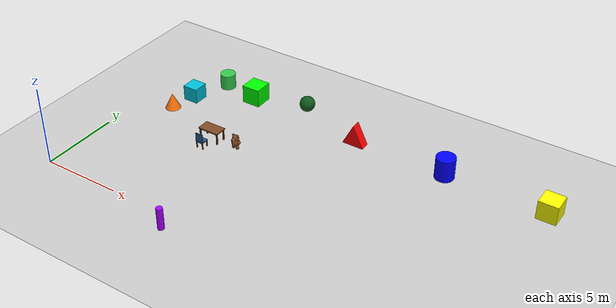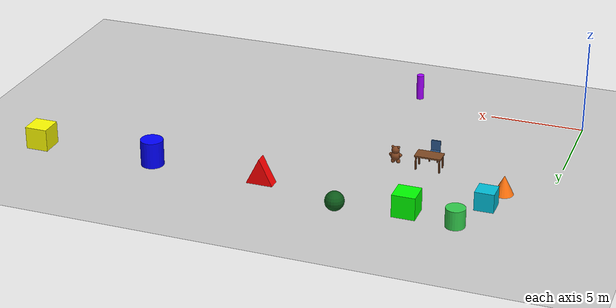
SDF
<sdf version="1.8">
 <world name="greenquartz_bto">
  <physics name="1ms" type="bullet-featherstone">
   <max_step_size>0.001</max_step_size>
   <real_time_factor>1.0</real_time_factor>
   <real_time_update_rate>1000</real_time_update_rate>
  </physics>
  <plugin name="gz::sim::systems::Physics" filename="gz-sim-physics-system"/>
  <plugin name="gz::sim::systems::UserCommands" filename="gz-sim-user-commands-system"/>
  <plugin name="gz::sim::systems::SceneBroadcaster" filename="gz-sim-scene-broadcaster-system"/>
  <plugin name="gz::sim::systems::Contact" filename="gz-sim-contact-system"/>
  <plugin name="gz::sim::systems::Sensors" filename="gz-sim-sensors-system">
   <render_engine>ogre2</render_engine>
  </plugin>
  <plugin name="go2_house_world::OrthographicCameraSystem" filename="liborthographic_camera_system.so">
   <sensor_name>top_down_camera</sensor_name>
   <view_width>36</view_width>
   <view_height>24</view_height>
  </plugin>
  <plugin filename="gz-sim-navsat-system" name="gz::sim::systems::NavSat"/>
  <spherical_coordinates>
   <surface_model>EARTH_WGS84</surface_model>
   <world_frame_orientation>ENU</world_frame_orientation>
   <latitude_deg>30.0444</latitude_deg>
   <longitude_deg>31.2357</longitude_deg>
   <elevation>74.0</elevation>
   <heading_deg>0</heading_deg>
  </spherical_coordinates>
  <gravity>0 0 -9.8</gravity>
  <magnetic_field>5.5645e-06 2.28758e-05 -4.23884e-05</magnetic_field>
  <atmosphere type="adiabatic"/>
  <scene><ambient>0.5 0.5 0.5 1</ambient><background>0.7 0.75 0.8 1</background><shadows>true</shadows></scene>
  <light type="directional" name="sun">
   <pose>0 0 10 0 0 0</pose>
   <diffuse>0.8 0.8 0.8 1</diffuse>
   <specular>0.2 0.2 0.2 1</specular>
   <attenuation>
    <range>1000</range>
    <constant>0.9</constant>
    <linear>0.01</linear>
    <quadratic>0.001</quadratic>
   </attenuation>
   <direction>-0.5 0.1 -0.9</direction>
  </light>
  <model name="ground_plane">
   <static>true</static>
   <link name="link">
    <collision name="collision">
     <geometry><plane><normal>0 0 1</normal><size>100 100</size></plane></geometry>
    </collision>
    <visual name="visual">
     <geometry><plane><normal>0 0 1</normal><size>100 100</size></plane></geometry>
     <material>
      <ambient>0.8 0.8 0.8 1</ambient>
      <diffuse>0.8 0.8 0.8 1</diffuse>
      <specular>0.8 0.8 0.8 1</specular>
     </material>
    </visual>
    <pose>0 0 -1 0 0 0</pose>
    <inertial>
     <mass>1</mass>
     <inertia><ixx>1</ixx><ixy>0</ixy><ixz>0</ixz><iyy>1</iyy><iyz>0</iyz><izz>1</izz></inertia>
    </inertial>
   </link>
  </model>
  <model name="top_down_camera">
   <static>true</static>
   <pose>14.8 5.8 16 0 1.570796 1.570796</pose>
   <link name="camera_link">
    <sensor name="top_down_camera" type="camera">
     <always_on>true</always_on>
     <update_rate>5</update_rate>
     <topic>/top_down/image</topic>
     <camera>
      <horizontal_fov>1.047</horizontal_fov>
      <image><width>1200</width><height>800</height><format>R8G8B8</format></image>
      <clip><near>0.1</near><far>100</far></clip>
     </camera>
    </sensor>
   </link>
  </model>
  <include>
   <uri>model://target_green_cube_living_room</uri>
   <name>target_green_cube_living_room</name>
   <pose>6.2 12.2 0.61 0 0 0</pose>
  </include>
  <include>
   <uri>model://target_red_triangle_bedroom1</uri>
   <name>target_red_triangle_bedroom1</name>
   <pose>14 11.6 0.71 0 0 0</pose>
  </include>
  <include>
   <uri>model://target_blue_cylinder_bedroom2</uri>
   <name>target_blue_cylinder_bedroom2</name>
   <pose>20 11.6 0.71 0 0 0</pose>
  </include>
  <include>
   <uri>model://target_yellow_cube_master_bedroom</uri>
   <name>target_yellow_cube_master_bedroom</name>
   <pose>26.4 11.6 0.61 0 0 0</pose>
  </include>
  <include>
   <uri>model://target_purple_cylinder_kitchen</uri>
   <name>target_purple_cylinder_kitchen</name>
   <pose>9.4 -1.0 0.71 0 0 0</pose>
  </include>
  <model name="living_room_table">
   <pose>6.5 7.2 0 0 0 0</pose>
   <static>true</static>
   <link name="table_link">
    <collision name="top_collision">
     <pose>0 0 0.76 0 0 0</pose>
     <geometry><box><size>1.4 0.8 0.08</size></box></geometry>
    </collision>
    <visual name="top_visual">
     <pose>0 0 0.76 0 0 0</pose>
     <geometry><box><size>1.4 0.8 0.08</size></box></geometry>
     <material><ambient>0.5 0.29 0.14 1</ambient><diffuse>0.5 0.29 0.14 1</diffuse></material>
    </visual>
    <collision name="front_left_leg_collision">
     <pose>-0.62 -0.32 0.36 0 0 0</pose>
     <geometry><box><size>0.08 0.08 0.72</size></box></geometry>
    </collision>
    <visual name="front_left_leg_visual">
     <pose>-0.62 -0.32 0.36 0 0 0</pose>
     <geometry><box><size>0.08 0.08 0.72</size></box></geometry>
     <material><ambient>0.4 0.22 0.1 1</ambient><diffuse>0.4 0.22 0.1 1</diffuse></material>
    </visual>
    <collision name="front_right_leg_collision">
     <pose>0.62 -0.32 0.36 0 0 0</pose>
     <geometry><box><size>0.08 0.08 0.72</size></box></geometry>
    </collision>
    <visual name="front_right_leg_visual">
     <pose>0.62 -0.32 0.36 0 0 0</pose>
     <geometry><box><size>0.08 0.08 0.72</size></box></geometry>
     <material><ambient>0.4 0.22 0.1 1</ambient><diffuse>0.4 0.22 0.1 1</diffuse></material>
    </visual>
    <collision name="rear_left_leg_collision">
     <pose>-0.62 0.32 0.36 0 0 0</pose>
     <geometry><box><size>0.08 0.08 0.72</size></box></geometry>
    </collision>
    <visual name="rear_left_leg_visual">
     <pose>-0.62 0.32 0.36 0 0 0</pose>
     <geometry><box><size>0.08 0.08 0.72</size></box></geometry>
     <material><ambient>0.4 0.22 0.1 1</ambient><diffuse>0.4 0.22 0.1 1</diffuse></material>
    </visual>
    <collision name="rear_right_leg_collision">
     <pose>0.62 0.32 0.36 0 0 0</pose>
     <geometry><box><size>0.08 0.08 0.72</size></box></geometry>
    </collision>
    <visual name="rear_right_leg_visual">
     <pose>0.62 0.32 0.36 0 0 0</pose>
     <geometry><box><size>0.08 0.08 0.72</size></box></geometry>
     <material><ambient>0.4 0.22 0.1 1</ambient><diffuse>0.4 0.22 0.1 1</diffuse></material>
    </visual>
   </link>
  </model>
  <model name="living_room_chair">
   <pose>6.5 6.2 0 0 0 0</pose>
   <static>true</static>
   <link name="chair_link">
    <collision name="seat_collision">
     <pose>0 0 0.45 0 0 0</pose>
     <geometry><box><size>0.5 0.5 0.08</size></box></geometry>
    </collision>
    <visual name="seat_visual">
     <pose>0 0 0.45 0 0 0</pose>
     <geometry><box><size>0.5 0.5 0.08</size></box></geometry>
     <material><ambient>0.17 0.34 0.55 1</ambient><diffuse>0.17 0.34 0.55 1</diffuse></material>
    </visual>
    <collision name="back_collision">
     <pose>0 -0.22 0.765 0 0 0</pose>
     <geometry><box><size>0.5 0.06 0.55</size></box></geometry>
    </collision>
    <visual name="back_visual">
     <pose>0 -0.22 0.765 0 0 0</pose>
     <geometry><box><size>0.5 0.06 0.55</size></box></geometry>
     <material><ambient>0.17 0.34 0.55 1</ambient><diffuse>0.17 0.34 0.55 1</diffuse></material>
    </visual>
    <collision name="front_left_leg_collision">
     <pose>-0.21 0.21 0.205 0 0 0</pose>
     <geometry><box><size>0.06 0.06 0.41</size></box></geometry>
    </collision>
    <visual name="front_left_leg_visual">
     <pose>-0.21 0.21 0.205 0 0 0</pose>
     <geometry><box><size>0.06 0.06 0.41</size></box></geometry>
     <material><ambient>0.4 0.22 0.1 1</ambient><diffuse>0.4 0.22 0.1 1</diffuse></material>
    </visual>
    <collision name="front_right_leg_collision">
     <pose>0.21 0.21 0.205 0 0 0</pose>
     <geometry><box><size>0.06 0.06 0.41</size></box></geometry>
    </collision>
    <visual name="front_right_leg_visual">
     <pose>0.21 0.21 0.205 0 0 0</pose>
     <geometry><box><size>0.06 0.06 0.41</size></box></geometry>
     <material><ambient>0.4 0.22 0.1 1</ambient><diffuse>0.4 0.22 0.1 1</diffuse></material>
    </visual>
    <collision name="rear_left_leg_collision">
     <pose>-0.21 -0.21 0.205 0 0 0</pose>
     <geometry><box><size>0.06 0.06 0.41</size></box></geometry>
    </collision>
    <visual name="rear_left_leg_visual">
     <pose>-0.21 -0.21 0.205 0 0 0</pose>
     <geometry><box><size>0.06 0.06 0.41</size></box></geometry>
     <material><ambient>0.4 0.22 0.1 1</ambient><diffuse>0.4 0.22 0.1 1</diffuse></material>
    </visual>
    <collision name="rear_right_leg_collision">
     <pose>0.21 -0.21 0.205 0 0 0</pose>
     <geometry><box><size>0.06 0.06 0.41</size></box></geometry>
    </collision>
    <visual name="rear_right_leg_visual">
     <pose>0.21 -0.21 0.205 0 0 0</pose>
     <geometry><box><size>0.06 0.06 0.41</size></box></geometry>
     <material><ambient>0.4 0.22 0.1 1</ambient><diffuse>0.4 0.22 0.1 1</diffuse></material>
    </visual>
   </link>
  </model>
  <model name="living_room_teddy_bear">
   <pose>8.3 7.2 0 0 0 0</pose>
   <static>true</static>
   <link name="teddy_bear_link">
    <collision name="bear_collision">
     <pose>0 0 0.5 0 0 0</pose>
     <geometry><cylinder><radius>0.35</radius><length>1</length></cylinder></geometry>
    </collision>
    <visual name="body">
     <pose>0 0 0.43 0 0 0</pose>
     <geometry><sphere><radius>0.26</radius></sphere></geometry>
     <material><ambient>0.5 0.27 0.13 1</ambient><diffuse>0.5 0.27 0.13 1</diffuse></material>
    </visual>
    <visual name="head">
     <pose>0 0 0.75 0 0 0</pose>
     <geometry><sphere><radius>0.21</radius></sphere></geometry>
     <material><ambient>0.5 0.27 0.13 1</ambient><diffuse>0.5 0.27 0.13 1</diffuse></material>
    </visual>
    <visual name="left_ear">
     <pose>-0.16 0 0.93 0 0 0</pose>
     <geometry><sphere><radius>0.07</radius></sphere></geometry>
     <material><ambient>0.5 0.27 0.13 1</ambient><diffuse>0.5 0.27 0.13 1</diffuse></material>
    </visual>
    <visual name="right_ear">
     <pose>0.16 0 0.93 0 0 0</pose>
     <geometry><sphere><radius>0.07</radius></sphere></geometry>
     <material><ambient>0.5 0.27 0.13 1</ambient><diffuse>0.5 0.27 0.13 1</diffuse></material>
    </visual>
    <visual name="left_arm">
     <pose>-0.24 0 0.48 0 0 0</pose>
     <geometry><sphere><radius>0.1</radius></sphere></geometry>
     <material><ambient>0.5 0.27 0.13 1</ambient><diffuse>0.5 0.27 0.13 1</diffuse></material>
    </visual>
    <visual name="right_arm">
     <pose>0.24 0 0.48 0 0 0</pose>
     <geometry><sphere><radius>0.1</radius></sphere></geometry>
     <material><ambient>0.5 0.27 0.13 1</ambient><diffuse>0.5 0.27 0.13 1</diffuse></material>
    </visual>
    <visual name="left_foot">
     <pose>-0.14 -0.04 0.11 0 0 0</pose>
     <geometry><sphere><radius>0.11</radius></sphere></geometry>
     <material><ambient>0.5 0.27 0.13 1</ambient><diffuse>0.5 0.27 0.13 1</diffuse></material>
    </visual>
    <visual name="right_foot">
     <pose>0.14 -0.04 0.11 0 0 0</pose>
     <geometry><sphere><radius>0.11</radius></sphere></geometry>
     <material><ambient>0.5 0.27 0.13 1</ambient><diffuse>0.5 0.27 0.13 1</diffuse></material>
    </visual>
    <visual name="muzzle">
     <pose>0 -0.18 0.72 0 0 0</pose>
     <geometry><sphere><radius>0.09</radius></sphere></geometry>
     <material><ambient>0.78 0.59 0.4 1</ambient><diffuse>0.78 0.59 0.4 1</diffuse></material>
    </visual>
    <visual name="nose">
     <pose>0 -0.26 0.73 0 0 0</pose>
     <geometry><sphere><radius>0.03</radius></sphere></geometry>
     <material><ambient>0.06 0.04 0.03 1</ambient><diffuse>0.06 0.04 0.03 1</diffuse></material>
    </visual>
    <visual name="left_eye">
     <pose>-0.08 -0.19 0.81 0 0 0</pose>
     <geometry><sphere><radius>0.025</radius></sphere></geometry>
     <material><ambient>0.06 0.04 0.03 1</ambient><diffuse>0.06 0.04 0.03 1</diffuse></material>
    </visual>
    <visual name="right_eye">
     <pose>0.08 -0.19 0.81 0 0 0</pose>
     <geometry><sphere><radius>0.025</radius></sphere></geometry>
     <material><ambient>0.06 0.04 0.03 1</ambient><diffuse>0.06 0.04 0.03 1</diffuse></material>
    </visual>
   </link>
  </model>
  <model name="cylinder">
   <pose>3.654 12.587 0.5 0 0 0</pose>
   <static>true</static>
   <link name="cylinder_link">
    <inertial>
     <inertia><ixx>0.1458</ixx><ixy>0</ixy><ixz>0</ixz><iyy>0.1458</iyy><iyz>0</iyz><izz>0.125</izz></inertia>
     <mass>1</mass>
    </inertial>
    <collision name="cylinder_collision">
     <geometry><cylinder><radius>0.5</radius><length>1</length></cylinder></geometry>
    </collision>
    <visual name="cylinder_visual">
     <geometry><cylinder><radius>0.5</radius><length>1</length></cylinder></geometry>
     <material>
      <ambient>0.2 0.8 0.3 1</ambient>
      <diffuse>0.2 0.8 0.3 1</diffuse>
      <specular>0 0 0 1</specular>
      <pbr><metal><metalness>0</metalness><roughness>1</roughness></metal></pbr>
     </material>
    </visual>
   </link>
  </model>
  <model name="cone">
   <pose>2.251 8.591 0.5 0 0 0</pose>
   <static>true</static>
   <link name="cone_link">
    <inertial>
     <inertia><ixx>0.075</ixx><ixy>0</ixy><ixz>0</ixz><iyy>0.075</iyy><iyz>0</iyz><izz>0.075</izz></inertia>
     <mass>1</mass>
    </inertial>
    <collision name="cone_collision">
     <geometry><cone><radius>0.5</radius><length>1</length></cone></geometry>
    </collision>
    <visual name="cone_visual">
     <geometry><cone><radius>0.5</radius><length>1</length></cone></geometry>
     <material>
      <ambient>1 0.45 0.05 1</ambient>
      <diffuse>1 0.45 0.05 1</diffuse>
      <specular>0 0 0 1</specular>
      <pbr><metal><metalness>0</metalness><roughness>1</roughness></metal></pbr>
     </material>
    </visual>
   </link>
  </model>
  <model name="sphere">
   <pose>9.592 13.054 0.5 0 0 0</pose>
   <static>true</static>
   <link name="sphere_link">
    <inertial>
     <inertia><ixx>0.1</ixx><ixy>0</ixy><ixz>0</ixz><iyy>0.1</iyy><iyz>0</iyz><izz>0.1</izz></inertia>
     <mass>1</mass>
    </inertial>
    <collision name="sphere_collision"><geometry><sphere><radius>0.5</radius></sphere></geometry></collision>
    <visual name="sphere_visual">
     <geometry><sphere><radius>0.5</radius></sphere></geometry>
     <material>
      <ambient>0.05 0.35 0.1 1</ambient>
      <diffuse>0.05 0.35 0.1 1</diffuse>
      <specular>0 0 0 1</specular>
      <pbr><metal><metalness>0</metalness><roughness>1</roughness></metal></pbr>
     </material>
    </visual>
   </link>
  </model>
  <model name="box">
   <pose>2.73 10.256 0.5 0 0 0</pose>
   <static>true</static>
   <link name="box_link">
    <inertial>
     <inertia><ixx>0.16666</ixx><ixy>0</ixy><ixz>0</ixz><iyy>0.16666</iyy><iyz>0</iyz><izz>0.16666</izz></inertia>
     <mass>1</mass>
    </inertial>
    <collision name="box_collision"><geometry><box><size>1 1 1</size></box></geometry></collision>
    <visual name="box_visual">
     <geometry><box><size>1 1 1</size></box></geometry>
     <material>
      <ambient>0 0.75 0.85 1</ambient>
      <diffuse>0 0.75 0.85 1</diffuse>
      <specular>0 0 0 1</specular>
      <pbr><metal><metalness>0</metalness><roughness>1</roughness></metal></pbr>
     </material>
    </visual>
   </link>
  </model>
 </world>
</sdf>

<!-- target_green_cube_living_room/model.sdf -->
<sdf version="1.9">
  <model name="target_green_cube_living_room">
    <static>true</static>
    <link name="target">
      <collision name="collision">
        <geometry>
          <box>
            <size>1.2 1.2 1.2</size>
          </box>
        </geometry>
      </collision>
      <visual name="visual">
        <geometry>
          <box>
            <size>1.2 1.2 1.2</size>
          </box>
        </geometry>
        <material>
          <ambient>0 1 0 1</ambient>
          <diffuse>0 1 0 1</diffuse>
          <specular>0 0 0 1</specular>
          <pbr>
            <metal>
              <metalness>0</metalness>
              <roughness>1</roughness>
            </metal>
          </pbr>
        </material>
      </visual>
    </link>
  </model>
</sdf>

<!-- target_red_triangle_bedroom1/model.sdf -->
<sdf version="1.9">
  <model name="target_red_triangle_bedroom1">
    <static>true</static>
    <link name="target">
      <collision name="collision">
        <geometry>
          <mesh>
            <uri>model://target_red_triangle_bedroom1/meshes/triangle.dae</uri>
            <scale>4 4 4</scale>
          </mesh>
        </geometry>
      </collision>
      <visual name="visual">
        <geometry>
          <mesh>
            <uri>model://target_red_triangle_bedroom1/meshes/triangle.dae</uri>
            <scale>4 4 4</scale>
          </mesh>
        </geometry>
        <material>
          <ambient>1 0 0 1</ambient>
          <diffuse>1 0 0 1</diffuse>
          <specular>0 0 0 1</specular>
          <pbr>
            <metal>
              <metalness>0</metalness>
              <roughness>1</roughness>
            </metal>
          </pbr>
        </material>
      </visual>
    </link>
  </model>
</sdf>

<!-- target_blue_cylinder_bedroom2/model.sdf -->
<sdf version="1.9">
  <model name="target_blue_cylinder_bedroom2">
    <static>true</static>
    <link name="target">
      <collision name="collision">
        <geometry>
          <cylinder>
            <radius>0.6</radius>
            <length>1.4</length>
          </cylinder>
        </geometry>
      </collision>
      <visual name="visual">
        <geometry>
          <cylinder>
            <radius>0.6</radius>
            <length>1.4</length>
          </cylinder>
        </geometry>
        <material>
          <ambient>0 0 1 1</ambient>
          <diffuse>0 0 1 1</diffuse>
          <specular>0 0 0 1</specular>
          <pbr>
            <metal>
              <metalness>0</metalness>
              <roughness>1</roughness>
            </metal>
          </pbr>
        </material>
      </visual>
    </link>
  </model>
</sdf>

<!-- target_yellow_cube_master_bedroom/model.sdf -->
<sdf version="1.9">
  <model name="target_yellow_cube_master_bedroom">
    <static>true</static>
    <link name="target">
      <collision name="collision">
        <geometry>
          <box>
            <size>1.2 1.2 1.2</size>
          </box>
        </geometry>
      </collision>
      <visual name="visual">
        <geometry>
          <box>
            <size>1.2 1.2 1.2</size>
          </box>
        </geometry>
        <material>
          <ambient>1 1 0 1</ambient>
          <diffuse>1 1 0 1</diffuse>
          <specular>0 0 0 1</specular>
          <pbr>
            <metal>
              <metalness>0</metalness>
              <roughness>1</roughness>
            </metal>
          </pbr>
        </material>
      </visual>
    </link>
  </model>
</sdf>

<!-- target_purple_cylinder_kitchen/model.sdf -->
<sdf version="1.9">
  <model name="target_purple_cylinder_kitchen">
    <static>true</static>
    <link name="target">
      <collision name="collision">
        <geometry>
          <cylinder>
            <radius>0.2</radius>
            <length>1.4</length>
          </cylinder>
        </geometry>
      </collision>
      <visual name="visual">
        <geometry>
          <cylinder>
            <radius>0.2</radius>
            <length>1.4</length>
          </cylinder>
        </geometry>
        <material>
          <ambient>.65 0 1 1</ambient>
          <diffuse>.65 0 1 1</diffuse>
          <specular>0 0 0 1</specular>
          <pbr>
            <metal>
              <metalness>0</metalness>
              <roughness>1</roughness>
            </metal>
          </pbr>
        </material>
      </visual>
    </link>
  </model>
</sdf>
